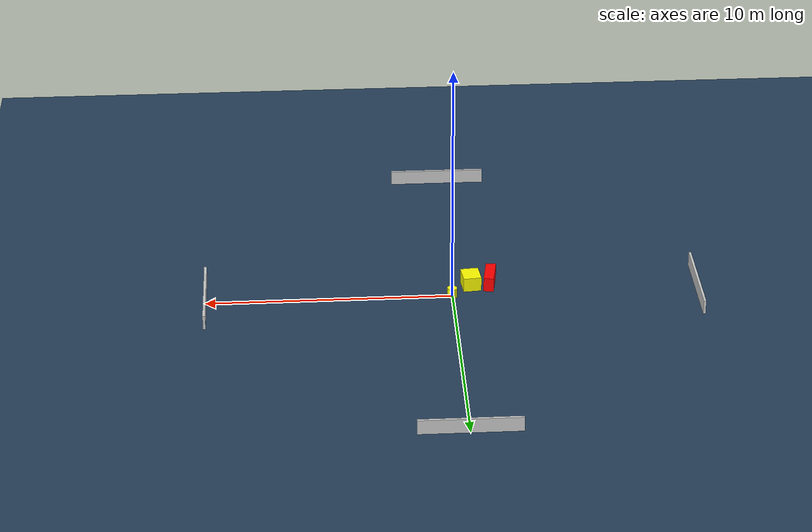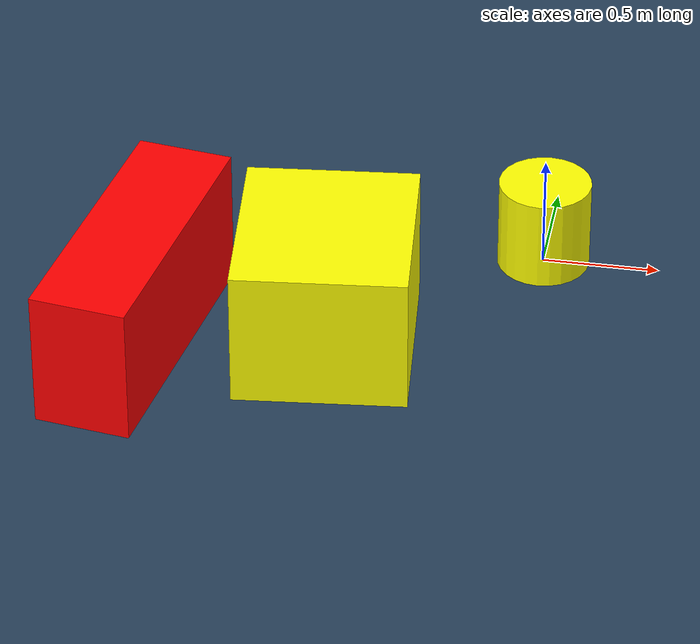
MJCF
<?xml version="1.0" ?>
<mujoco model="generated_environment">
  <option timestep="0.01" integrator="RK4" cone="elliptic"/>
  <default>
    <geom density="1"/>
  </default>
  <asset>
    <texture builtin="gradient" height="3072" name="skybox" rgb1="0.3 0.5 0.7" rgb2="0 0 0" type="skybox" width="512"/>
    <texture builtin="checker" height="300" name="groundplane" rgb1="0.2 0.3 0.4" rgb2="0.1 0.2 0.3" type="2d" width="300"/>
    <material name="groundplane" reflectance="0.2" texrepeat="5 5" texture="groundplane"/>
  </asset>
  <worldbody>
    <light dir="0 0 -1" directional="true" pos="0 0 1.5"/>
    <geom condim="3" friction="0.5 0.005 0.001" material="groundplane" name="floor" pos="0 0 0" size="0 0 0.05" type="plane"/>
    <body name="walls">
      <geom name="wall_1" condim="4" pos="-10.0 0.0 0.3" rgba="0.800000011920929 0.800000011920929 0.800000011920929 1.0" size="0.05 2.0 0.3" type="box"/>
      <geom name="wall_2" condim="4" pos="10.0 0.0 0.3" rgba="0.800000011920929 0.800000011920929 0.800000011920929 1.0" size="0.05 2.0 0.3" type="box"/>
      <geom name="wall_3" condim="4" pos="0.0 -10.0 0.3" rgba="0.800000011920929 0.800000011920929 0.800000011920929 1.0" size="2.0 0.05 0.3" type="box"/>
      <geom name="wall_4" condim="4" pos="0.0 10.0 0.3" rgba="0.800000011920929 0.800000011920929 0.800000011920929 1.0" size="2.0 0.05 0.3" type="box"/>
    </body>
    <body name="robot">
      <joint name="joint_x" type="slide" pos="0 0 0" axis="1 0 0"/>
      <joint name="joint_y" type="slide" pos="0 0 0" axis="0 1 0"/>
      <geom name="robot" type="cylinder" pos="0.0 0.0 0.2" size="0.2 0.2 0.0" mass="5.0" friction="1.0 0.005 0.0001" condim="4" rgba="1.0 1.0 0.0 1.0"/>
    </body>
    <body name="obstacle_1_movable">
      <geom name="obstacle_1_movable" condim="4" pos="-0.8137948167830181 -0.7784911224138802 0.3" euler="0 0 95.76655691969525" friction="0.0 0.005 0.001" rgba="1.0 1.0 0.0 1.0" size="0.419464566303871 0.3660010318862847 0.3" type="box" mass="0.1"/>
      <joint type="free"/>
    </body>
    <body name="obstacle_2_static">
      <geom name="obstacle_2_static" condim="4" pos="-1.6003451815793492 -0.917737342068998 0.3" euler="0 0 261.25548619455606" friction="0.0 0.005 0.001" rgba="1.0 0.0 0.0 1.0" size="0.6212556197712278 0.20565265579114486 0.3" type="box"/>
    </body>
  </worldbody>
  <actuator>
    <motor name="actuator_x" joint="joint_x" gear="1" ctrlrange="-1 1"/>
    <motor name="actuator_y" joint="joint_y" gear="1" ctrlrange="-1 1"/>
  </actuator>
</mujoco>
